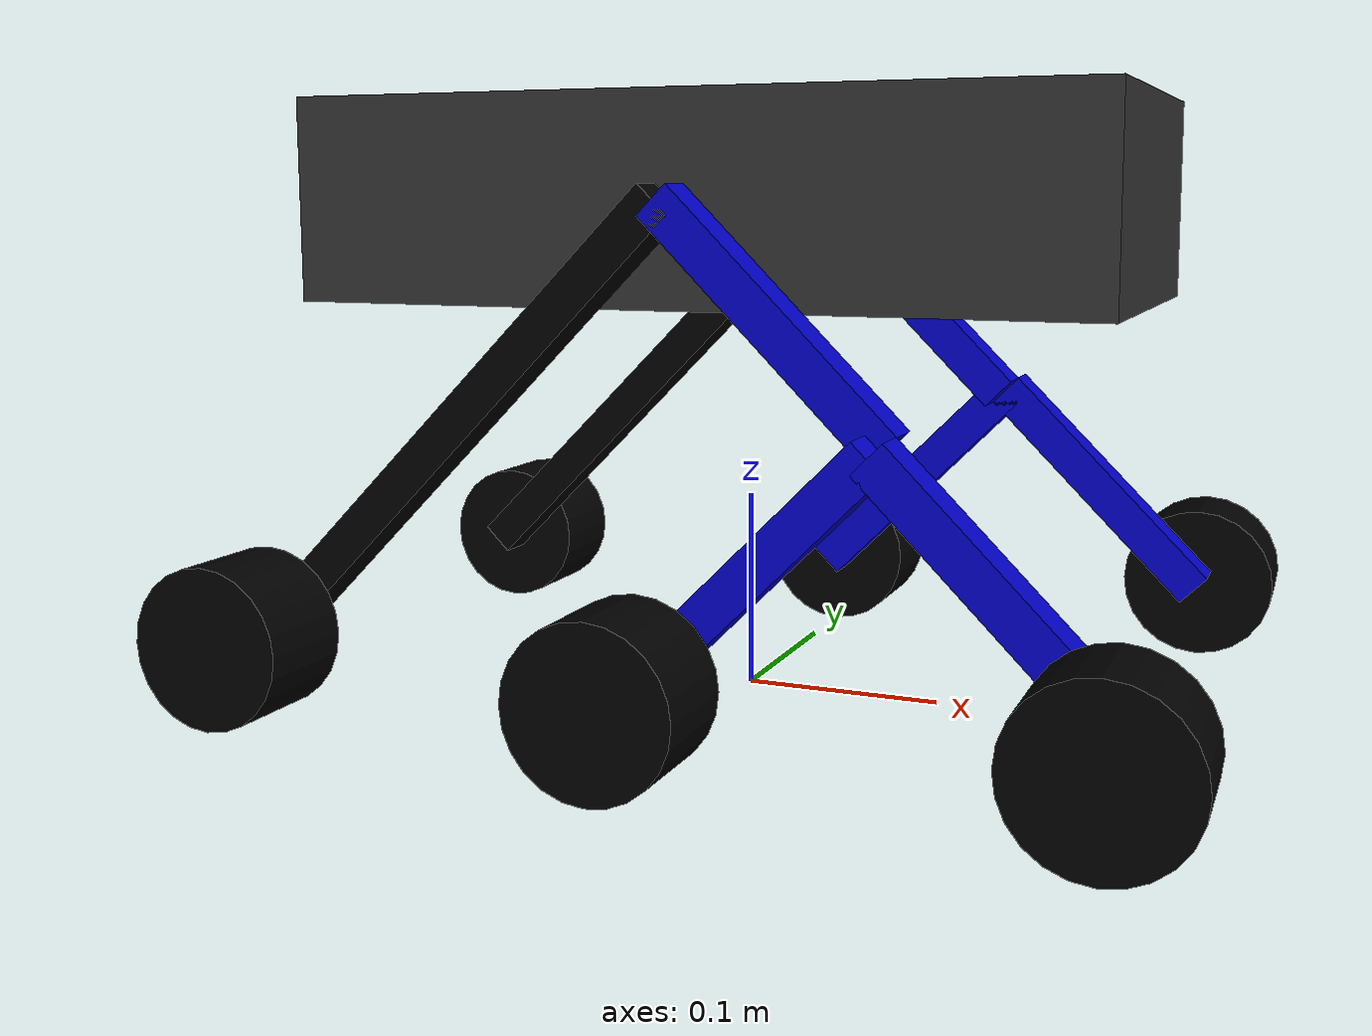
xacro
<?xml version="1.0"?>
<robot name="my1model" xmlns:xacro="http://www.ros.org/wiki/xacro">
        <!-- Put here the robot description -->

<xacro:property name="PI" value="3.1415926535897931"/>

<xacro:property name="chassisHeight" value="0.1"/>
<xacro:property name="chassisLength" value="0.4"/>
<xacro:property name="chassisWidth" value="0.2"/>
<xacro:property name="chassisMass" value="0.2"/>

<xacro:property name="wheelWidth" value="0.05"/>
<xacro:property name="wheelRadius" value="0.04"/>
<xacro:property name="wheelPos" value="0.2"/>
<xacro:property name="wheelMass" value="0.3"/>

<xacro:property name="rockerMass" value="0.5"/>
<xacro:property name="rockerWidth" value="0.02"/>
<xacro:property name="rockerLengthFront" value="0.15"/>
<xacro:property name="rockerLengthBack" value="0.3"/>

<xacro:property name="bogieMass" value="0.3"/>
<xacro:property name="bogieWidth" value="0.02"/>
<xacro:property name="bogieLength" value="0.15"/>

<xacro:property name="cameraSize" value="0.05"/>
<xacro:property name="cameraMass" value="0.1"/>

 <xacro:include filename="$(find hal)/urdf/my1model.gazebo" />
 <xacro:include filename="$(find hal)/urdf/materials.xacro" />
 <xacro:include filename="$(find hal)/urdf/macros.xacro" />

<link name="footprint" />

<joint name="base_joint" type="fixed">
  <parent link="footprint"/>
  <child link="chassis"/>
  <origin xyz="0 0 ${wheelRadius+rockerLengthBack*1.41/2}" rpy="0 0 0"/>
</joint>

<link name='chassis'>
  <collision>
    <origin xyz="0 0 0" rpy="0 0 0"/>
    <geometry>
      <box size="${chassisLength} ${chassisWidth} ${chassisHeight}"/>
    </geometry>
  </collision>
  <visual>
    <origin xyz="0 0 0" rpy="0 0 0"/>
    <geometry>
      <box size="${chassisLength} ${chassisWidth} ${chassisHeight}"/>
    </geometry>
    <material name="grey"/>
  </visual>
  <inertial>
    <origin xyz="0 0 0" rpy="0 0 0"/>
    <mass value="${chassisMass}"/>
    <box_inertia m="${chassisMass}" x="${chassisLength}" y="${chassisWidth}" z="${chassisHeight}"/>
  </inertial>
</link>

<rocker  lr="left" tY="1"/>
<rocker  lr="right" tY="-1"/>

<bogie  lr="left" tY="1"/>
<bogie  lr="right" tY="-1"/>

<wheel  lr="left" tY="1" fmb="front" tX="1" rb="bogie" tZ="-1" width_rb="${bogieWidth}" length_rb="${bogieLength}"/>
<wheel  lr="right" tY="-1" fmb="front" tX="1" rb="bogie" tZ="-1" width_rb="${bogieWidth}" length_rb="${bogieLength}"/>

<wheel  lr="left" tY="1" fmb="middle" tX="-1" rb="bogie" tZ="-1" width_rb="${bogieWidth}" length_rb="${bogieLength}"/>
<wheel  lr="right" tY="-1" fmb="middle" tX="-1" rb="bogie" tZ="-1" width_rb="${bogieWidth}" length_rb="${bogieLength}"/>

<wheel  lr="left" tY="1" fmb="back" tX="-1" rb="rocker" tZ="-1" width_rb="${rockerWidth}" length_rb="${rockerLengthBack}"/>
<wheel  lr="right" tY="-1" fmb="back" tX="-1" rb="rocker" tZ="-1" width_rb="${rockerWidth}" length_rb="${rockerLengthBack}"/>

<gazebo>
  <plugin name="gazebo_ros_control" filename="libgazebo_ros_control.so">
    <robotNamespace>/</robotNamespace>
  </plugin>
</gazebo>

</robot>

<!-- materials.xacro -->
<robot name="my1model" xmlns:xacro="http://www.ros.org/wiki/xacro">
        <!-- Put here the robot description -->

<material name="black">
  <color rgba="0.0 0.0 0.0 1.0"/>
</material>

<material name="blue">
  <color rgba="0.0 0.0 0.8 1.0"/>
</material>

<material name="green">
  <color rgba="0.0 0.8 0.0 1.0"/>
</material>

<material name="grey">
  <color rgba="0.2 0.2 0.2 1.0"/>
</material>

<material name="orange">
  <color rgba="${255/255} ${108/255} ${10/255} 1.0"/>
</material>

<material name="brown">
  <color rgba="${222/255} ${207/255} ${195/255} 1.0"/>
</material>

<material name="red">
  <color rgba="0.8 0.0 0.0 1.0"/>
</material>

<material name="white">
  <color rgba="1.0 1.0 1.0 1.0"/>
</material>

</robot>

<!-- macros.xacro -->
<robot name="my1model" xmlns:xacro="http://www.ros.org/wiki/xacro">
        <!-- Put here the robot description -->

<xacro:macro name="cylinder_inertia" params="m r h">
  <inertia  ixx="${m*(3*r*r+h*h)/12}" ixy = "0" ixz = "0"
    iyy="${m*(3*r*r+h*h)/12}" iyz = "0"
    izz="${m*r*r/2}"
  />
</xacro:macro>

<xacro:macro name="box_inertia" params="m x y z">
  <inertia  ixx="${m*(y*y+z*z)/12}" ixy = "0" ixz = "0"
    iyy="${m*(x*x+z*z)/12}" iyz = "0"
    izz="${m*(x*x+z*z)/12}"
  />
</xacro:macro>

<xacro:macro name="sphere_inertia" params="m r">
  <inertia  ixx="${2*m*r*r/5}" ixy = "0" ixz = "0"
    iyy="${2*m*r*r/5}" iyz = "0"
    izz="${2*m*r*r/5}"
  />
</xacro:macro>

<xacro:macro name ="rocker" params="lr tY">

<link name="${lr}_rocker">
  <collision>
    <origin xyz="${rockerLengthFront*1.41/4} 0 -${rockerLengthFront*1.41/4}" rpy="0 ${PI/4} 0" />
    <geometry>
      <box size="${rockerLengthFront} ${rockerWidth} ${rockerWidth}"/>
    </geometry>
  </collision>

<visual>
    <origin xyz="${rockerLengthFront*1.41/4} 0 -${rockerLengthFront*1.41/4}" rpy="0 ${PI/4} 0" />
    <geometry>
       <box size="${rockerLengthFront} ${rockerWidth} ${rockerWidth}"/>
    </geometry>
    <material name="blue"/>
  </visual>

  <inertial>
    <origin xyz="${rockerLengthFront*1.41/4} 0 -${rockerLengthFront*1.41/4}" rpy="0 ${PI/4} 0" />
      <mass value="${rockerMass}"/>
      <box_inertia m="${rockerMass}" x="${rockerLengthFront}" y="${rockerWidth}" z="${rockerWidth}"/>
  </inertial>

  <collision>
    <origin xyz="${-rockerLengthBack*1.41/4} 0 -${rockerLengthBack*1.41/4}" rpy="0 ${-PI/4} 0" />

    <geometry>
      <box size="${rockerLengthBack} ${rockerWidth} ${rockerWidth}"/>
    </geometry>
  </collision>

 <visual>
    <origin xyz="${-rockerLengthBack*1.41/4} 0 -${rockerLengthBack*1.41/4}" rpy="0 ${-PI/4} 0" />
    <geometry>
       <box size="${rockerLengthBack} ${rockerWidth} ${rockerWidth}"/>
    </geometry>
    <material name="black"/>
  </visual>

  <inertial>
    <origin xyz="${-rockerLengthBack*1.41/4} 0 -${rockerLengthBack*1.41/4}" rpy="0 ${-PI/4} 0" />
      <mass value="${rockerMass}"/>
      <box_inertia m="${rockerMass}" x="${rockerLengthBack}" y="${rockerWidth}" z="${rockerWidth}"/>
  </inertial>

</link>

<gazebo reference="${lr}_rocker">
  <mu1 value="1.0"/>
  <mu2 value="1.0"/>
  <kp  value="0.0" />
  <kd  value="0.0" />
  <material>Gazebo/Red</material>
</gazebo>

<joint name="${lr}_rocker_hinge" type="revolute">
  <parent link="chassis"/>
  <child link="${lr}_rocker"/>
  <origin xyz="0 ${tY*rockerWidth/2+tY*chassisWidth/2} 0" rpy="0 0 0" />
  <axis xyz="0 1 0" rpy="0 0 0" />
  <limit effort="1" lower="${-PI/6}" upper="${PI/6}" velocity="0.0001"/>
  <joint_properties damping="0.0" friction="0.0"/>
</joint>

</xacro:macro>

<xacro:macro name ="bogie" params="lr tY">

<link name="${lr}_bogie">
  <collision>
    <origin xyz="${bogieLength*1.41/4} 0 ${-bogieLength*1.41/4}" rpy="0 ${PI/4} 0" />
    <geometry>
      <box size="${bogieLength} ${bogieWidth} ${bogieWidth}"/>
    </geometry>
  </collision>

<visual>
    <origin xyz="${bogieLength*1.41/4} 0 ${-bogieLength*1.41/4}" rpy="0 ${PI/4} 0" />
    <geometry>
       <box size="${bogieLength} ${bogieWidth} ${bogieWidth}"/>
    </geometry>
    <material name="blue"/>
  </visual>

  <inertial>
    <origin xyz="${bogieLength*1.41/4} 0 ${-bogieLength*1.41/4}" rpy="0 ${PI/4} 0" />
      <mass value="${bogieMass}"/>
      <box_inertia m="${bogieMass}" x="${bogieLength}" y="${bogieWidth}" z="${bogieWidth}"/>
  </inertial>

  <collision>
    <origin xyz="${-bogieLength*1.41/4} 0 ${-bogieLength*1.41/4}" rpy="0 ${-PI/4} 0" />
    <geometry>
      <box size="${bogieLength} ${bogieWidth} ${bogieWidth}"/>
    </geometry>
  </collision>

<visual>
    <origin xyz="${-bogieLength*1.41/4} 0 ${-bogieLength*1.41/4}" rpy="0 ${-PI/4} 0" />
    <geometry>
       <box size="${bogieLength} ${bogieWidth} ${bogieWidth}"/>
    </geometry>
    <material name="blue"/>
  </visual>

  <inertial>
    <origin xyz="${-bogieLength*1.41/4} 0 ${-bogieLength*1.41/4}" rpy="0 ${-PI/4} 0" />
      <mass value="${bogieMass}"/>
      <box_inertia m="${bogieMass}" x="${bogieLength}" y="${bogieWidth}" z="${bogieWidth}"/>
  </inertial>

</link>

<gazebo reference="${lr}_bogie">
  <mu1 value="1.0"/>
  <mu2 value="1.0"/>
  <kp  value="0.0" />
  <kd  value="0.0" />
  <material>Gazebo/Black</material>
</gazebo>

<joint name="${lr}_bogie_hinge" type="revolute">
  <parent link="${lr}_rocker"/>
  <child link="${lr}_bogie"/>
<origin xyz="${rockerLengthFront*1.41/2} ${tY*rockerWidth/2+tY*bogieWidth/2} -${rockerLengthFront*1.41/2}" rpy="0 0 0" />
  <axis xyz="0 1 0" rpy="0 0 0" />
  <limit effort="1" lower="${-PI/6}" upper="${PI/6}" velocity="0.0001"/>
  <joint_properties damping="0.0" friction="0.0"/>
</joint>

</xacro:macro>

<xacro:macro name="wheel" params="lr tY fmb tX rb tZ width_rb length_rb">

<link name="${lr}_${fmb}_wheel">
  <collision>
    <origin xyz="0 0 0" rpy="0 ${PI/2} ${PI/2}" />
    <geometry>
      <cylinder length="${wheelWidth}" radius="${wheelRadius}"/>
    </geometry>
  </collision>

  <visual>
    <origin xyz="0 0 0" rpy="0 ${PI/2} ${PI/2}" />
    <geometry>
      <cylinder length="${wheelWidth}" radius="${wheelRadius}"/>
    </geometry>
    <material name="black"/>
  </visual>

  <inertial>
    <origin xyz="0 0 0" rpy="0 ${PI/2} ${PI/2}" />
   <mass value="${wheelMass}"/>
    <cylinder_inertia m="${wheelMass}" r="${wheelRadius}" h="${wheelWidth}"/>
</inertial>
</link>

<gazebo reference="${lr}_${fmb}_wheel">
  <mu1 value="200.0"/>
  <mu2 value="100.0"/>
  <kp  value="100000000.0" />
  <kd  value="1.0" />
  <material>Gazebo/Black</material>
</gazebo>

<joint name="${lr}_${fmb}_wheel_hinge" type="continuous">
  <parent link="${lr}_${rb}"/>
  <child link="${lr}_${fmb}_wheel"/>

<origin xyz="${tX*length_rb*1.41/2} ${tY*width_rb/2+tY*wheelWidth/2} ${tZ*length_rb*1.41/2}" rpy="0 0 0" />
  <axis xyz="0 1 0" rpy="0 0 0" />
  <limit effort="1" velocity="0"/>
  <joint_properties damping="0.1" friction="0.02"/>
</joint>

<transmission name="${lr}_${fmb}_trans">
  <type>transmission_interface/SimpleTransmission</type>

  <actuator name="${lr}_${fmb}_Motor">
    <mechanicalReduction>10</mechanicalReduction>
  </actuator>

  <joint name="${lr}_${fmb}_wheel_hinge">
      <hardwareInterface>VelocityJointInterface</hardwareInterface>
  </joint>

</transmission>

</xacro:macro>

</robot>
